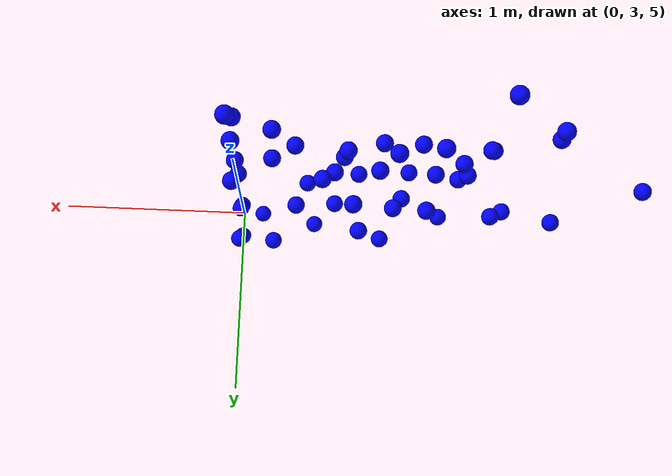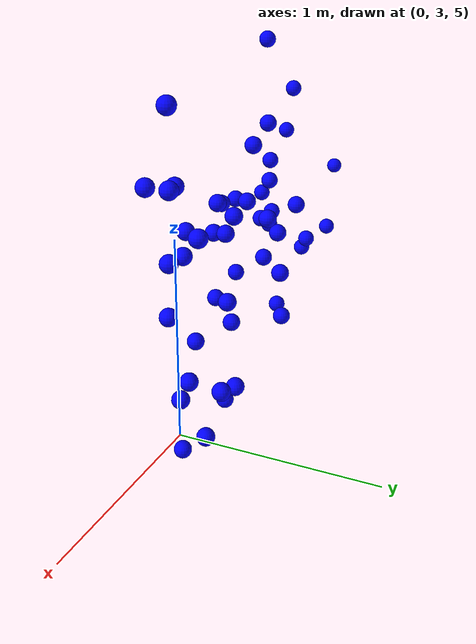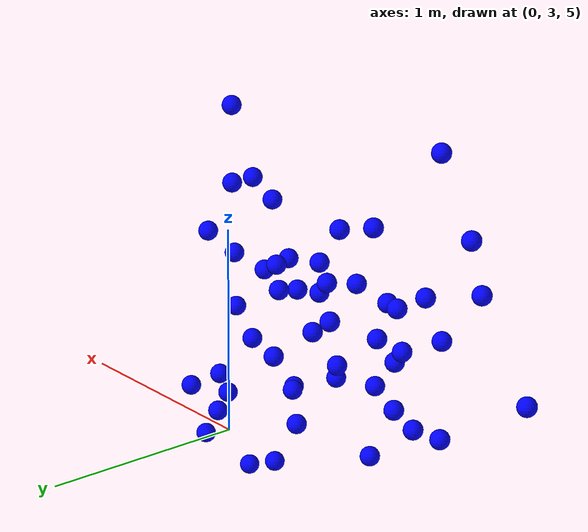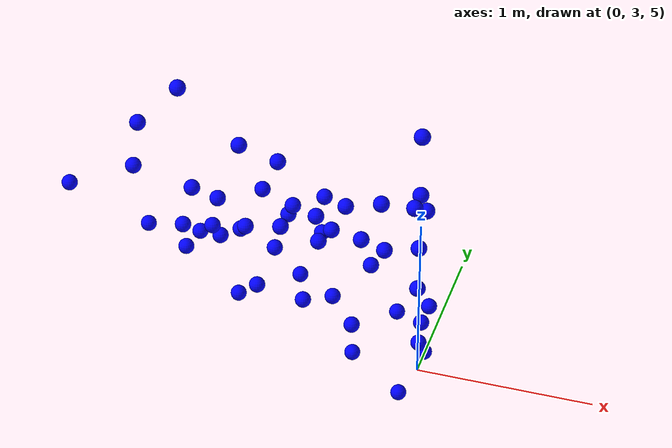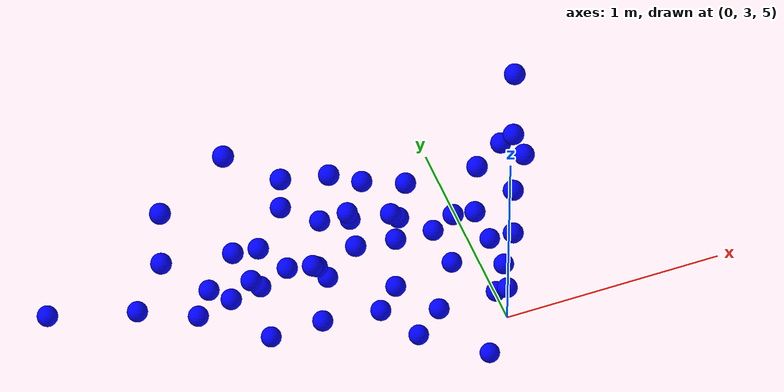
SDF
<sdf version="1.10">
 <world name="sphere">
  <model name="ground_plane">
   <static>true</static>
   <link name="link">
    <collision name="collision">
     <geometry><plane><normal>0 0 1</normal><size>100 100</size></plane></geometry>
    </collision>
    <visual name="visual">
     <geometry><plane><normal>0 0 1</normal><size>100 100</size></plane></geometry>
     <material>
      <ambient>0.800000012 0.800000012 0.800000012 1</ambient>
      <diffuse>0.800000012 0.800000012 0.800000012 1</diffuse>
      <specular>0.800000012 0.800000012 0.800000012 1</specular>
     </material>
    </visual>
    <inertial>
     <mass>1</mass>
     <inertia><ixx>1</ixx><ixy>0</ixy><ixz>0</ixz><iyy>1</iyy><iyz>0</iyz><izz>1</izz></inertia>
    </inertial>
   </link>
  </model>
  <model name="sphere_00">
   <pose>-0.8101000189781189 3.01882004737854 6.2474203109741211 0 0 0</pose>
   <link name="sphere_link">
    <inertial>
     <inertia>
      <ixx>0.10000000000000001</ixx>
      <ixy>0</ixy>
      <ixz>0</ixz>
      <iyy>0.10000000000000001</iyy>
      <iyz>0</iyz>
      <izz>0.10000000000000001</izz>
     </inertia>
     <mass>1</mass>
    </inertial>
    <collision name="sphere_collision">
     <geometry><sphere><radius>0.044999999999999998</radius></sphere></geometry>
    </collision>
    <visual name="sphere_visual">
     <geometry><sphere><radius>0.044999999999999998</radius></sphere></geometry>
     <material><ambient>0 0 1 1</ambient><diffuse>0 0 1 1</diffuse><specular>0 0 1 1</specular></material>
    </visual>
   </link>
   <static>false</static>
   <self_collide>true</self_collide>
  </model>
  <model name="sphere_01">
   <pose>-0.30862641334533691 3.1076400279998779 5.5938301086425781 0 0 0</pose>
   <link name="sphere_link">
    <inertial>
     <inertia>
      <ixx>0.10000000000000001</ixx>
      <ixy>0</ixy>
      <ixz>0</ixz>
      <iyy>0.10000000000000001</iyy>
      <iyz>0</iyz>
      <izz>0.10000000000000001</izz>
     </inertia>
     <mass>1</mass>
    </inertial>
    <collision name="sphere_collision">
     <geometry><sphere><radius>0.044999999999999998</radius></sphere></geometry>
    </collision>
    <visual name="sphere_visual">
     <geometry><sphere><radius>0.044999999999999998</radius></sphere></geometry>
     <material><ambient>0 0 1 1</ambient><diffuse>0 0 1 1</diffuse><specular>0 0 1 1</specular></material>
    </visual>
   </link>
   <static>false</static>
   <self_collide>true</self_collide>
  </model>
  <model name="sphere_02">
   <pose>-0.18142400681972504 3.2076399326324463 5.2198047637939453 0 0 0</pose>
   <link name="sphere_link">
    <inertial>
     <inertia>
      <ixx>0.10000000000000001</ixx>
      <ixy>0</ixy>
      <ixz>0</ixz>
      <iyy>0.10000000000000001</iyy>
      <iyz>0</iyz>
      <izz>0.10000000000000001</izz>
     </inertia>
     <mass>1</mass>
    </inertial>
    <collision name="sphere_collision">
     <geometry><sphere><radius>0.044999999999999998</radius></sphere></geometry>
    </collision>
    <visual name="sphere_visual">
     <geometry><sphere><radius>0.044999999999999998</radius></sphere></geometry>
     <material><ambient>0 0 1 1</ambient><diffuse>0 0 1 1</diffuse><specular>0 0 1 1</specular></material>
    </visual>
   </link>
   <static>false</static>
   <self_collide>true</self_collide>
  </model>
  <model name="sphere_05">
   <pose>0 2.9661004543304443 5.8801798820495605 0 0 0</pose>
   <link name="sphere_link">
    <inertial>
     <inertia>
      <ixx>0.10000000000000001</ixx>
      <ixy>0</ixy>
      <ixz>0</ixz>
      <iyy>0.10000000000000001</iyy>
      <iyz>0</iyz>
      <izz>0.10000000000000001</izz>
     </inertia>
     <mass>1</mass>
    </inertial>
    <collision name="sphere_collision">
     <geometry><sphere><radius>0.044999999999999998</radius></sphere></geometry>
    </collision>
    <visual name="sphere_visual">
     <geometry><sphere><radius>0.044999999999999998</radius></sphere></geometry>
     <material><ambient>0 0 1 1</ambient><diffuse>0 0 1 1</diffuse><specular>0 0 1 1</specular></material>
    </visual>
   </link>
   <static>false</static>
   <self_collide>true</self_collide>
  </model>
  <model name="sphere_08">
   <pose>0 3.0543978214263916 5.3013801574707031 0 0 0</pose>
   <link name="sphere_link">
    <inertial>
     <inertia>
      <ixx>0.10000000000000001</ixx>
      <ixy>0</ixy>
      <ixz>0</ixz>
      <iyy>0.10000000000000001</iyy>
      <iyz>0</iyz>
      <izz>0.10000000000000001</izz>
     </inertia>
     <mass>1</mass>
    </inertial>
    <collision name="sphere_collision">
     <geometry><sphere><radius>0.044999999999999998</radius></sphere></geometry>
    </collision>
    <visual name="sphere_visual">
     <geometry><sphere><radius>0.044999999999999998</radius></sphere></geometry>
     <material><ambient>0 0 1 1</ambient><diffuse>0 0 1 1</diffuse><specular>0 0 1 1</specular></material>
    </visual>
   </link>
   <static>false</static>
   <self_collide>true</self_collide>
  </model>
  <model name="sphere_09">
   <pose>-0.50494199991226196 3.0061700344085693 5.8660669326782227 0 0 0</pose>
   <link name="sphere_link">
    <inertial>
     <inertia>
      <ixx>0.10000000000000001</ixx>
      <ixy>0</ixy>
      <ixz>0</ixz>
      <iyy>0.10000000000000001</iyy>
      <iyz>0</iyz>
      <izz>0.10000000000000001</izz>
     </inertia>
     <mass>1</mass>
     <pose>0 0 0.69999999999999996 0 0 0</pose>
    </inertial>
    <collision name="sphere_collision">
     <geometry><sphere><radius>0.044999999999999998</radius></sphere></geometry>
    </collision>
    <visual name="sphere_visual">
     <geometry><sphere><radius>0.044999999999999998</radius></sphere></geometry>
     <material><ambient>0 0 1 1</ambient><diffuse>0 0 1 1</diffuse><specular>0 0 1 1</specular></material>
    </visual>
   </link>
   <static>false</static>
   <self_collide>true</self_collide>
  </model>
  <model name="sphere_10">
   <pose>0 3.2213499546051025 5.2891402244567871 0 0 0</pose>
   <link name="sphere_link">
    <inertial>
     <inertia>
      <ixx>0.10000000000000001</ixx>
      <ixy>0</ixy>
      <ixz>0</ixz>
      <iyy>0.10000000000000001</iyy>
      <iyz>0</iyz>
      <izz>0.10000000000000001</izz>
     </inertia>
     <mass>1</mass>
     <pose>0 0 0.69999999999999996 0 0 0</pose>
    </inertial>
    <collision name="sphere_collision">
     <geometry><sphere><radius>0.044999999999999998</radius></sphere></geometry>
    </collision>
    <visual name="sphere_visual">
     <geometry><sphere><radius>0.044999999999999998</radius></sphere></geometry>
     <material><ambient>0 0 1 1</ambient><diffuse>0 0 1 1</diffuse><specular>0 0 1 1</specular></material>
    </visual>
   </link>
   <static>false</static>
   <self_collide>true</self_collide>
  </model>
  <model name="sphere_11">
   <pose>0 2.9791254997253418 6.5953397750854492 0 0 0</pose>
   <link name="sphere_link">
    <inertial>
     <inertia>
      <ixx>0.10000000000000001</ixx>
      <ixy>0</ixy>
      <ixz>0</ixz>
      <iyy>0.10000000000000001</iyy>
      <iyz>0</iyz>
      <izz>0.10000000000000001</izz>
     </inertia>
     <mass>1</mass>
     <pose>0 0 0.69999999999999996 0 0 0</pose>
    </inertial>
    <collision name="sphere_collision">
     <geometry><sphere><radius>0.044999999999999998</radius></sphere></geometry>
    </collision>
    <visual name="sphere_visual">
     <geometry><sphere><radius>0.044999999999999998</radius></sphere></geometry>
     <material><ambient>0 0 1 1</ambient><diffuse>0 0 1 1</diffuse><specular>0 0 1 1</specular></material>
    </visual>
   </link>
   <static>false</static>
   <self_collide>true</self_collide>
  </model>
  <model name="sphere_15">
   <pose>-0.19403360784053802 2.8993599414825439 6.1798100471496582 0 0 0</pose>
   <link name="sphere_link">
    <inertial>
     <inertia>
      <ixx>0.10000000000000001</ixx>
      <ixy>0</ixy>
      <ixz>0</ixz>
      <iyy>0.10000000000000001</iyy>
      <iyz>0</iyz>
      <izz>0.10000000000000001</izz>
     </inertia>
     <mass>1</mass>
     <pose>0 0 0.69999999999999996 0 0 0</pose>
    </inertial>
    <collision name="sphere_collision">
     <geometry><sphere><radius>0.044999999999999998</radius></sphere></geometry>
    </collision>
    <visual name="sphere_visual">
     <geometry><sphere><radius>0.044999999999999998</radius></sphere></geometry>
     <material><ambient>0 0 1 1</ambient><diffuse>0 0 1 1</diffuse><specular>0 0 1 1</specular></material>
    </visual>
   </link>
   <static>false</static>
   <self_collide>true</self_collide>
  </model>
  <model name="sphere_16">
   <pose>-1.3119100332260132 2.8792433738708496 6.7110099792480469 0 0 0</pose>
   <link name="sphere_link">
    <inertial>
     <inertia>
      <ixx>0.10000000000000001</ixx>
      <ixy>0</ixy>
      <ixz>0</ixz>
      <iyy>0.10000000000000001</iyy>
      <iyz>0</iyz>
      <izz>0.10000000000000001</izz>
     </inertia>
     <mass>1</mass>
     <pose>0 0 0.69999999999999996 0 0 0</pose>
    </inertial>
    <collision name="sphere_collision">
     <geometry><sphere><radius>0.044999999999999998</radius></sphere></geometry>
    </collision>
    <visual name="sphere_visual">
     <geometry><sphere><radius>0.044999999999999998</radius></sphere></geometry>
     <material><ambient>0 0 1 1</ambient><diffuse>0 0 1 1</diffuse><specular>0 0 1 1</specular></material>
    </visual>
   </link>
   <static>false</static>
   <self_collide>true</self_collide>
  </model>
  <model name="sphere_19">
   <pose>-0.74941295385360718 2.8662300109863281 5.9346098899841309 0 0 0</pose>
   <link name="sphere_link">
    <inertial>
     <inertia>
      <ixx>0.10000000000000001</ixx>
      <ixy>0</ixy>
      <ixz>0</ixz>
      <iyy>0.10000000000000001</iyy>
      <iyz>0</iyz>
      <izz>0.10000000000000001</izz>
     </inertia>
     <mass>1</mass>
     <pose>0 0 0.69999999999999996 0 0 0</pose>
    </inertial>
    <collision name="sphere_collision">
     <geometry><sphere><radius>0.044999999999999998</radius></sphere></geometry>
    </collision>
    <visual name="sphere_visual">
     <geometry><sphere><radius>0.044999999999999998</radius></sphere></geometry>
     <material><ambient>0 0 1 1</ambient><diffuse>0 0 1 1</diffuse><specular>0 0 1 1</specular></material>
    </visual>
   </link>
   <static>false</static>
   <self_collide>true</self_collide>
  </model>
  <model name="sphere_22">
   <pose>-1.0258899927139282 3.0086886882781982 6.3174500465393066 0 0 0</pose>
   <link name="sphere_link">
    <inertial>
     <inertia>
      <ixx>0.10000000000000001</ixx>
      <ixy>0</ixy>
      <ixz>0</ixz>
      <iyy>0.10000000000000001</iyy>
      <iyz>0</iyz>
      <izz>0.10000000000000001</izz>
     </inertia>
     <mass>1</mass>
     <pose>0 0 0.69999999999999996 0 0 0</pose>
    </inertial>
    <collision name="sphere_collision">
     <geometry><sphere><radius>0.044999999999999998</radius></sphere></geometry>
    </collision>
    <visual name="sphere_visual">
     <geometry><sphere><radius>0.044999999999999998</radius></sphere></geometry>
     <material><ambient>0 0 1 1</ambient><diffuse>0 0 1 1</diffuse><specular>0 0 1 1</specular></material>
    </visual>
   </link>
   <static>false</static>
   <self_collide>true</self_collide>
  </model>
  <model name="sphere_26">
   <pose>0 2.8582220077514648 6.2225799560546875 0 0 0</pose>
   <link name="sphere_link">
    <inertial>
     <inertia>
      <ixx>0.10000000000000001</ixx>
      <ixy>0</ixy>
      <ixz>0</ixz>
      <iyy>0.10000000000000001</iyy>
      <iyz>0</iyz>
      <izz>0.10000000000000001</izz>
     </inertia>
     <mass>1</mass>
     <pose>0 0 0.69999999999999996 0 0 0</pose>
    </inertial>
    <collision name="sphere_collision">
     <geometry><sphere><radius>0.044999999999999998</radius></sphere></geometry>
    </collision>
    <visual name="sphere_visual">
     <geometry><sphere><radius>0.044999999999999998</radius></sphere></geometry>
     <material><ambient>0 0 1 1</ambient><diffuse>0 0 1 1</diffuse><specular>0 0 1 1</specular></material>
    </visual>
   </link>
   <static>false</static>
   <self_collide>true</self_collide>
  </model>
  <model name="sphere_29">
   <pose>0 2.9778904914855957 6.2235097885131836 0 0 0</pose>
   <link name="sphere_link">
    <inertial>
     <inertia>
      <ixx>0.10000000000000001</ixx>
      <ixy>0</ixy>
      <ixz>0</ixz>
      <iyy>0.10000000000000001</iyy>
      <iyz>0</iyz>
      <izz>0.10000000000000001</izz>
     </inertia>
     <mass>1</mass>
     <pose>0 0 0.69999999999999996 0 0 0</pose>
    </inertial>
    <collision name="sphere_collision">
     <geometry><sphere><radius>0.044999999999999998</radius></sphere></geometry>
    </collision>
    <visual name="sphere_visual">
     <geometry><sphere><radius>0.044999999999999998</radius></sphere></geometry>
     <material><ambient>0 0 1 1</ambient><diffuse>0 0 1 1</diffuse><specular>0 0 1 1</specular></material>
    </visual>
   </link>
   <static>false</static>
   <self_collide>true</self_collide>
  </model>
  <model name="sphere_30">
   <pose>0 3.0074362754821777 5.1943202018737793 0 0 0</pose>
   <link name="sphere_link">
    <inertial>
     <inertia>
      <ixx>0.10000000000000001</ixx>
      <ixy>0</ixy>
      <ixz>0</ixz>
      <iyy>0.10000000000000001</iyy>
      <iyz>0</iyz>
      <izz>0.10000000000000001</izz>
     </inertia>
     <mass>1</mass>
     <pose>0 0 0.69999999999999996 0 0 0</pose>
    </inertial>
    <collision name="sphere_collision">
     <geometry><sphere><radius>0.044999999999999998</radius></sphere></geometry>
    </collision>
    <visual name="sphere_visual">
     <geometry><sphere><radius>0.044999999999999998</radius></sphere></geometry>
     <material><ambient>0 0 1 1</ambient><diffuse>0 0 1 1</diffuse><specular>0 0 1 1</specular></material>
    </visual>
   </link>
   <static>false</static>
   <self_collide>true</self_collide>
  </model>
  <model name="sphere_31">
   <pose>-0.85268700122833252 3.0630147457122803 5.6283798217773438 0 0 0</pose>
   <link name="sphere_link">
    <inertial>
     <inertia>
      <ixx>0.10000000000000001</ixx>
      <ixy>0</ixy>
      <ixz>0</ixz>
      <iyy>0.10000000000000001</iyy>
      <iyz>0</iyz>
      <izz>0.10000000000000001</izz>
     </inertia>
     <mass>1</mass>
     <pose>0 0 0.69999999999999996 0 0 0</pose>
    </inertial>
    <collision name="sphere_collision">
     <geometry><sphere><radius>0.044999999999999998</radius></sphere></geometry>
    </collision>
    <visual name="sphere_visual">
     <geometry><sphere><radius>0.044999999999999998</radius></sphere></geometry>
     <material><ambient>0 0 1 1</ambient><diffuse>0 0 1 1</diffuse><specular>0 0 1 1</specular></material>
    </visual>
   </link>
   <static>false</static>
   <self_collide>true</self_collide>
  </model>
  <model name="sphere_32">
   <pose>-1.2731363773345947 2.9205100536346436 6.0470099449157715 0 0 0</pose>
   <link name="sphere_link">
    <inertial>
     <inertia>
      <ixx>0.10000000000000001</ixx>
      <ixy>0</ixy>
      <ixz>0</ixz>
      <iyy>0.10000000000000001</iyy>
      <iyz>0</iyz>
      <izz>0.10000000000000001</izz>
     </inertia>
     <mass>1</mass>
     <pose>0 0 0.69999999999999996 0 0 0</pose>
    </inertial>
    <collision name="sphere_collision">
     <geometry><sphere><radius>0.044999999999999998</radius></sphere></geometry>
    </collision>
    <visual name="sphere_visual">
     <geometry><sphere><radius>0.044999999999999998</radius></sphere></geometry>
     <material><ambient>0 0 1 1</ambient><diffuse>0 0 1 1</diffuse><specular>0 0 1 1</specular></material>
    </visual>
   </link>
   <static>false</static>
   <self_collide>true</self_collide>
  </model>
  <model name="sphere_33">
   <pose>-0.60159999132156372 3.1903257369995117 5.940730094909668 0 0 0</pose>
   <link name="sphere_link">
    <inertial>
     <inertia>
      <ixx>0.10000000000000001</ixx>
      <ixy>0</ixy>
      <ixz>0</ixz>
      <iyy>0.10000000000000001</iyy>
      <iyz>0</iyz>
      <izz>0.10000000000000001</izz>
     </inertia>
     <mass>1</mass>
     <pose>0 0 0.69999999999999996 0 0 0</pose>
    </inertial>
    <collision name="sphere_collision">
     <geometry><sphere><radius>0.044999999999999998</radius></sphere></geometry>
    </collision>
    <visual name="sphere_visual">
     <geometry><sphere><radius>0.044999999999999998</radius></sphere></geometry>
     <material><ambient>0 0 1 1</ambient><diffuse>0 0 1 1</diffuse><specular>0 0 1 1</specular></material>
    </visual>
   </link>
   <static>false</static>
   <self_collide>true</self_collide>
  </model>
  <model name="sphere_34">
   <pose>0 2.9557774066925049 5.6145200729370117 0 0 0</pose>
   <link name="sphere_link">
    <inertial>
     <inertia>
      <ixx>0.10000000000000001</ixx>
      <ixy>0</ixy>
      <ixz>0</ixz>
      <iyy>0.10000000000000001</iyy>
      <iyz>0</iyz>
      <izz>0.10000000000000001</izz>
     </inertia>
     <mass>1</mass>
     <pose>0 0 0.69999999999999996 0 0 0</pose>
    </inertial>
    <collision name="sphere_collision">
     <geometry><sphere><radius>0.044999999999999998</radius></sphere></geometry>
    </collision>
    <visual name="sphere_visual">
     <geometry><sphere><radius>0.044999999999999998</radius></sphere></geometry>
     <material><ambient>0 0 1 1</ambient><diffuse>0 0 1 1</diffuse><specular>0 0 1 1</specular></material>
    </visual>
   </link>
   <static>false</static>
   <self_collide>true</self_collide>
  </model>
  <model name="sphere_36">
   <pose>0 3.137521505355835 5.0250701904296875 0 0 0</pose>
   <link name="sphere_link">
    <inertial>
     <inertia>
      <ixx>0.10000000000000001</ixx>
      <ixy>0</ixy>
      <ixz>0</ixz>
      <iyy>0.10000000000000001</iyy>
      <iyz>0</iyz>
      <izz>0.10000000000000001</izz>
     </inertia>
     <mass>1</mass>
     <pose>0 0 0.69999999999999996 0 0 0</pose>
    </inertial>
    <collision name="sphere_collision">
     <geometry><sphere><radius>0.044999999999999998</radius></sphere></geometry>
    </collision>
    <visual name="sphere_visual">
     <geometry><sphere><radius>0.044999999999999998</radius></sphere></geometry>
     <material><ambient>0 0 1 1</ambient><diffuse>0 0 1 1</diffuse><specular>0 0 1 1</specular></material>
    </visual>
   </link>
   <static>false</static>
   <self_collide>true</self_collide>
  </model>
  <model name="sphere_37">
   <pose>-1.1448651552200317 2.9704298973083496 5.9682598114013672 0 0 0</pose>
   <link name="sphere_link">
    <inertial>
     <inertia>
      <ixx>0.10000000000000001</ixx>
      <ixy>0</ixy>
      <ixz>0</ixz>
      <iyy>0.10000000000000001</iyy>
      <iyz>0</iyz>
      <izz>0.10000000000000001</izz>
     </inertia>
     <mass>1</mass>
     <pose>0 0 0.69999999999999996 0 0 0</pose>
    </inertial>
    <collision name="sphere_collision">
     <geometry><sphere><radius>0.044999999999999998</radius></sphere></geometry>
    </collision>
    <visual name="sphere_visual">
     <geometry><sphere><radius>0.044999999999999998</radius></sphere></geometry>
     <material><ambient>0 0 1 1</ambient><diffuse>0 0 1 1</diffuse><specular>0 0 1 1</specular></material>
    </visual>
   </link>
   <static>false</static>
   <self_collide>true</self_collide>
  </model>
  <model name="sphere_41">
   <pose>0 3.1170649528503418 6.0235199928283691 0 0 0</pose>
   <link name="sphere_link">
    <inertial>
     <inertia>
      <ixx>0.10000000000000001</ixx>
      <ixy>0</ixy>
      <ixz>0</ixz>
      <iyy>0.10000000000000001</iyy>
      <iyz>0</iyz>
      <izz>0.10000000000000001</izz>
     </inertia>
     <mass>1</mass>
     <pose>0 0 0.69999999999999996 0 0 0</pose>
    </inertial>
    <collision name="sphere_collision">
     <geometry><sphere><radius>0.044999999999999998</radius></sphere></geometry>
    </collision>
    <visual name="sphere_visual">
     <geometry><sphere><radius>0.044999999999999998</radius></sphere></geometry>
     <material><ambient>0 0 1 1</ambient><diffuse>0 0 1 1</diffuse><specular>0 0 1 1</specular></material>
    </visual>
   </link>
   <static>false</static>
   <self_collide>true</self_collide>
  </model>
  <model name="sphere_46">
   <pose>-2.0550100803375244 3.0402500629425049 5.8366270065307617 0 0 0</pose>
   <link name="sphere_link">
    <inertial>
     <inertia>
      <ixx>0.10000000000000001</ixx>
      <ixy>0</ixy>
      <ixz>0</ixz>
      <iyy>0.10000000000000001</iyy>
      <iyz>0</iyz>
      <izz>0.10000000000000001</izz>
     </inertia>
     <mass>1</mass>
     <pose>0 0 0.69999999999999996 0 0 0</pose>
    </inertial>
    <collision name="sphere_collision">
     <geometry><sphere><radius>0.044999999999999998</radius></sphere></geometry>
    </collision>
    <visual name="sphere_visual">
     <geometry><sphere><radius>0.044999999999999998</radius></sphere></geometry>
     <material><ambient>0 0 1 1</ambient><diffuse>0 0 1 1</diffuse><specular>0 0 1 1</specular></material>
    </visual>
   </link>
   <static>false</static>
   <self_collide>true</self_collide>
  </model>
  <model name="sphere_51">
   <pose>-0.50798201560974121 3.0342063903808594 5.3864998817443848 0 0 0</pose>
   <link name="sphere_link">
    <inertial>
     <inertia>
      <ixx>0.10000000000000001</ixx>
      <ixy>0</ixy>
      <ixz>0</ixz>
      <iyy>0.10000000000000001</iyy>
      <iyz>0</iyz>
      <izz>0.10000000000000001</izz>
     </inertia>
     <mass>1</mass>
     <pose>0 0 0.69999999999999996 0 0 0</pose>
    </inertial>
    <collision name="sphere_collision">
     <geometry><sphere><radius>0.044999999999999998</radius></sphere></geometry>
    </collision>
    <visual name="sphere_visual">
     <geometry><sphere><radius>0.044999999999999998</radius></sphere></geometry>
     <material><ambient>0 0 1 1</ambient><diffuse>0 0 1 1</diffuse><specular>0 0 1 1</specular></material>
    </visual>
   </link>
   <static>false</static>
   <self_collide>true</self_collide>
  </model>
  <model name="sphere_53">
   <pose>-0.63582098484039307 3.2473959922790527 5.6487398147583008 0 0 0</pose>
   <link name="sphere_link">
    <inertial>
     <inertia>
      <ixx>0.10000000000000001</ixx>
      <ixy>0</ixy>
      <ixz>0</ixz>
      <iyy>0.10000000000000001</iyy>
      <iyz>0</iyz>
      <izz>0.10000000000000001</izz>
     </inertia>
     <mass>1</mass>
     <pose>0 0 0.69999999999999996 0 0 0</pose>
    </inertial>
    <collision name="sphere_collision">
     <geometry><sphere><radius>0.044999999999999998</radius></sphere></geometry>
    </collision>
    <visual name="sphere_visual">
     <geometry><sphere><radius>0.044999999999999998</radius></sphere></geometry>
     <material><ambient>0 0 1 1</ambient><diffuse>0 0 1 1</diffuse><specular>0 0 1 1</specular></material>
    </visual>
   </link>
   <static>false</static>
   <self_collide>true</self_collide>
  </model>
  <model name="sphere_54">
   <pose>-0.72920799255371094 3.0216891765594482 5.9718399047851562 0 0 0</pose>
   <link name="sphere_link">
    <inertial>
     <inertia>
      <ixx>0.10000000000000001</ixx>
      <ixy>0</ixy>
      <ixz>0</ixz>
      <iyy>0.10000000000000001</iyy>
      <iyz>0</iyz>
      <izz>0.10000000000000001</izz>
     </inertia>
     <mass>1</mass>
     <pose>0 0 0.69999999999999996 0 0 0</pose>
    </inertial>
    <collision name="sphere_collision">
     <geometry><sphere><radius>0.044999999999999998</radius></sphere></geometry>
    </collision>
    <visual name="sphere_visual">
     <geometry><sphere><radius>0.044999999999999998</radius></sphere></geometry>
     <material><ambient>0 0 1 1</ambient><diffuse>0 0 1 1</diffuse><specular>0 0 1 1</specular></material>
    </visual>
   </link>
   <static>false</static>
   <self_collide>true</self_collide>
  </model>
  <model name="sphere_56">
   <pose>-0.56873500347137451 2.9315109252929688 5.9971199035644531 0 0 0</pose>
   <link name="sphere_link">
    <inertial>
     <inertia>
      <ixx>0.10000000000000001</ixx>
      <ixy>0</ixy>
      <ixz>0</ixz>
      <iyy>0.10000000000000001</iyy>
      <iyz>0</iyz>
      <izz>0.10000000000000001</izz>
     </inertia>
     <mass>1</mass>
     <pose>0 0 0.69999999999999996 0 0 0</pose>
    </inertial>
    <collision name="sphere_collision">
     <geometry><sphere><radius>0.044999999999999998</radius></sphere></geometry>
    </collision>
    <visual name="sphere_visual">
     <geometry><sphere><radius>0.044999999999999998</radius></sphere></geometry>
     <material><ambient>0 0 1 1</ambient><diffuse>0 0 1 1</diffuse><specular>0 0 1 1</specular></material>
    </visual>
   </link>
   <static>false</static>
   <self_collide>true</self_collide>
  </model>
  <model name="sphere_57">
   <pose>-0.097056999802589417 2.9574806690216064 4.8474798202514648 0 0 0</pose>
   <link name="sphere_link">
    <inertial>
     <inertia>
      <ixx>0.10000000000000001</ixx>
      <ixy>0</ixy>
      <ixz>0</ixz>
      <iyy>0.10000000000000001</iyy>
      <iyz>0</iyz>
      <izz>0.10000000000000001</izz>
     </inertia>
     <mass>1</mass>
     <pose>0 0 0.69999999999999996 0 0 0</pose>
    </inertial>
    <collision name="sphere_collision">
     <geometry><sphere><radius>0.044999999999999998</radius></sphere></geometry>
    </collision>
    <visual name="sphere_visual">
     <geometry><sphere><radius>0.044999999999999998</radius></sphere></geometry>
     <material><ambient>0 0 1 1</ambient><diffuse>0 0 1 1</diffuse><specular>0 0 1 1</specular></material>
    </visual>
   </link>
   <static>false</static>
   <self_collide>true</self_collide>
  </model>
  <model name="sphere_60">
   <pose>-0.55157202482223511 2.9167957305908203 5.8429899215698242 0 0 0</pose>
   <link name="sphere_link">
    <inertial>
     <inertia>
      <ixx>0.10000000000000001</ixx>
      <ixy>0</ixy>
      <ixz>0</ixz>
      <iyy>0.10000000000000001</iyy>
      <iyz>0</iyz>
      <izz>0.10000000000000001</izz>
     </inertia>
     <mass>1</mass>
     <pose>0 0 0.69999999999999996 0 0 0</pose>
    </inertial>
    <collision name="sphere_collision">
     <geometry><sphere><radius>0.044999999999999998</radius></sphere></geometry>
    </collision>
    <visual name="sphere_visual">
     <geometry><sphere><radius>0.044999999999999998</radius></sphere></geometry>
     <material><ambient>0 0 1 1</ambient><diffuse>0 0 1 1</diffuse><specular>0 0 1 1</specular></material>
    </visual>
   </link>
   <static>false</static>
   <self_collide>true</self_collide>
  </model>
  <model name="sphere_62">
   <pose>-1.3090777397155762 2.8540999889373779 5.8382902145385742 0 0 0</pose>
   <link name="sphere_link">
    <inertial>
     <inertia>
      <ixx>0.10000000000000001</ixx>
      <ixy>0</ixy>
      <ixz>0</ixz>
      <iyy>0.10000000000000001</iyy>
      <iyz>0</iyz>
      <izz>0.10000000000000001</izz>
     </inertia>
     <mass>1</mass>
     <pose>0 0 0.69999999999999996 0 0 0</pose>
    </inertial>
    <collision name="sphere_collision">
     <geometry><sphere><radius>0.044999999999999998</radius></sphere></geometry>
    </collision>
    <visual name="sphere_visual">
     <geometry><sphere><radius>0.044999999999999998</radius></sphere></geometry>
     <material><ambient>0 0 1 1</ambient><diffuse>0 0 1 1</diffuse><specular>0 0 1 1</specular></material>
    </visual>
   </link>
   <static>false</static>
   <self_collide>true</self_collide>
  </model>
  <model name="sphere_64">
   <pose>-1.0180035829544067 2.9742200374603271 5.7857599258422852 0 0 0</pose>
   <link name="sphere_link">
    <inertial>
     <inertia>
      <ixx>0.10000000000000001</ixx>
      <ixy>0</ixy>
      <ixz>0</ixz>
      <iyy>0.10000000000000001</iyy>
      <iyz>0</iyz>
      <izz>0.10000000000000001</izz>
     </inertia>
     <mass>1</mass>
     <pose>0 0 0.69999999999999996 0 0 0</pose>
    </inertial>
    <collision name="sphere_collision">
     <geometry><sphere><radius>0.044999999999999998</radius></sphere></geometry>
    </collision>
    <visual name="sphere_visual">
     <geometry><sphere><radius>0.044999999999999998</radius></sphere></geometry>
     <material><ambient>0 0 1 1</ambient><diffuse>0 0 1 1</diffuse><specular>0 0 1 1</specular></material>
    </visual>
   </link>
   <static>false</static>
   <self_collide>true</self_collide>
  </model>
  <model name="sphere_66">
   <pose>-1.1381896734237671 2.9742898941040039 5.7152600288391113 0 0 0</pose>
   <link name="sphere_link">
    <inertial>
     <inertia>
      <ixx>0.10000000000000001</ixx>
      <ixy>0</ixy>
      <ixz>0</ixz>
      <iyy>0.10000000000000001</iyy>
      <iyz>0</iyz>
      <izz>0.10000000000000001</izz>
     </inertia>
     <mass>1</mass>
     <pose>0 0 0.69999999999999996 0 0 0</pose>
    </inertial>
    <collision name="sphere_collision">
     <geometry><sphere><radius>0.044999999999999998</radius></sphere></geometry>
    </collision>
    <visual name="sphere_visual">
     <geometry><sphere><radius>0.044999999999999998</radius></sphere></geometry>
     <material><ambient>0 0 1 1</ambient><diffuse>0 0 1 1</diffuse><specular>0 0 1 1</specular></material>
    </visual>
   </link>
   <static>false</static>
   <self_collide>true</self_collide>
  </model>
  <model name="sphere_68">
   <pose>-1.6346132755279541 3.1454999446868896 5.5695600509643555 0 0 0</pose>
   <link name="sphere_link">
    <inertial>
     <inertia>
      <ixx>0.10000000000000001</ixx>
      <ixy>0</ixy>
      <ixz>0</ixz>
      <iyy>0.10000000000000001</iyy>
      <iyz>0</iyz>
      <izz>0.10000000000000001</izz>
     </inertia>
     <mass>1</mass>
     <pose>0 0 0.69999999999999996 0 0 0</pose>
    </inertial>
    <collision name="sphere_collision">
     <geometry><sphere><radius>0.044999999999999998</radius></sphere></geometry>
    </collision>
    <visual name="sphere_visual">
     <geometry><sphere><radius>0.044999999999999998</radius></sphere></geometry>
     <material><ambient>0 0 1 1</ambient><diffuse>0 0 1 1</diffuse><specular>0 0 1 1</specular></material>
    </visual>
   </link>
   <static>false</static>
   <self_collide>true</self_collide>
  </model>
  <model name="sphere_69">
   <pose>-0.89724403619766235 2.8791100978851318 5.4942898750305176 0 0 0</pose>
   <link name="sphere_link">
    <inertial>
     <inertia>
      <ixx>0.10000000000000001</ixx>
      <ixy>0</ixy>
      <ixz>0</ixz>
      <iyy>0.10000000000000001</iyy>
      <iyz>0</iyz>
      <izz>0.10000000000000001</izz>
     </inertia>
     <mass>1</mass>
     <pose>0 0 0.69999999999999996 0 0 0</pose>
    </inertial>
    <collision name="sphere_collision">
     <geometry><sphere><radius>0.044999999999999998</radius></sphere></geometry>
    </collision>
    <visual name="sphere_visual">
     <geometry><sphere><radius>0.044999999999999998</radius></sphere></geometry>
     <material><ambient>0 0 1 1</ambient><diffuse>0 0 1 1</diffuse><specular>0 0 1 1</specular></material>
    </visual>
   </link>
   <static>false</static>
   <self_collide>true</self_collide>
  </model>
  <model name="sphere_71">
   <pose>-0.7541159987449646 3.2116148471832275 5.3532800674438477 0 0 0</pose>
   <link name="sphere_link">
    <inertial>
     <inertia>
      <ixx>0.10000000000000001</ixx>
      <ixy>0</ixy>
      <ixz>0</ixz>
      <iyy>0.10000000000000001</iyy>
      <iyz>0</iyz>
      <izz>0.10000000000000001</izz>
     </inertia>
     <mass>1</mass>
     <pose>0 0 0.69999999999999996 0 0 0</pose>
    </inertial>
    <collision name="sphere_collision">
     <geometry><sphere><radius>0.044999999999999998</radius></sphere></geometry>
    </collision>
    <visual name="sphere_visual">
     <geometry><sphere><radius>0.044999999999999998</radius></sphere></geometry>
     <material><ambient>0 0 1 1</ambient><diffuse>0 0 1 1</diffuse><specular>0 0 1 1</specular></material>
    </visual>
   </link>
   <static>false</static>
   <self_collide>true</self_collide>
  </model>
  <model name="sphere_72">
   <pose>-1.3178199529647827 3.1317098140716553 5.5926299095153809 0 0 0</pose>
   <link name="sphere_link">
    <inertial>
     <inertia>
      <ixx>0.10000000000000001</ixx>
      <ixy>0</ixy>
      <ixz>0</ixz>
      <iyy>0.10000000000000001</iyy>
      <iyz>0</iyz>
      <izz>0.10000000000000001</izz>
     </inertia>
     <mass>1</mass>
     <pose>0 0 0.69999999999999996 0 0 0</pose>
    </inertial>
    <collision name="sphere_collision">
     <geometry><sphere><radius>0.044999999999999998</radius></sphere></geometry>
    </collision>
    <visual name="sphere_visual">
     <geometry><sphere><radius>0.044999999999999998</radius></sphere></geometry>
     <material><ambient>0 0 1 1</ambient><diffuse>0 0 1 1</diffuse><specular>0 0 1 1</specular></material>
    </visual>
   </link>
   <static>false</static>
   <self_collide>true</self_collide>
  </model>
  <model name="sphere_73">
   <pose>-1.5954699516296387 2.88720703125 6.1508598327636719 0 0 0</pose>
   <link name="sphere_link">
    <inertial>
     <inertia>
      <ixx>0.10000000000000001</ixx>
      <ixy>0</ixy>
      <ixz>0</ixz>
      <iyy>0.10000000000000001</iyy>
      <iyz>0</iyz>
      <izz>0.10000000000000001</izz>
     </inertia>
     <mass>1</mass>
     <pose>0 0 0.69999999999999996 0 0 0</pose>
    </inertial>
    <collision name="sphere_collision">
     <geometry><sphere><radius>0.044999999999999998</radius></sphere></geometry>
    </collision>
    <visual name="sphere_visual">
     <geometry><sphere><radius>0.044999999999999998</radius></sphere></geometry>
     <material><ambient>0 0 1 1</ambient><diffuse>0 0 1 1</diffuse><specular>0 0 1 1</specular></material>
    </visual>
   </link>
   <static>false</static>
   <self_collide>true</self_collide>
  </model>
  <model name="sphere_74">
   <pose>-1.1813000440597534 2.9703299999237061 5.7769145965576172 0 0 0</pose>
   <link name="sphere_link">
    <inertial>
     <inertia>
      <ixx>0.10000000000000001</ixx>
      <ixy>0</ixy>
      <ixz>0</ixz>
      <iyy>0.10000000000000001</iyy>
      <iyz>0</iyz>
      <izz>0.10000000000000001</izz>
     </inertia>
     <mass>1</mass>
     <pose>0 0 0.69999999999999996 0 0 0</pose>
    </inertial>
    <collision name="sphere_collision">
     <geometry><sphere><radius>0.044999999999999998</radius></sphere></geometry>
    </collision>
    <visual name="sphere_visual">
     <geometry><sphere><radius>0.044999999999999998</radius></sphere></geometry>
     <material><ambient>0 0 1 1</ambient><diffuse>0 0 1 1</diffuse><specular>0 0 1 1</specular></material>
    </visual>
   </link>
   <static>false</static>
   <self_collide>true</self_collide>
  </model>
  <model name="sphere_79">
   <pose>-1.5744999647140503 2.934680700302124 6.4048399925231934 0 0 0</pose>
   <link name="sphere_link">
    <inertial>
     <inertia>
      <ixx>0.10000000000000001</ixx>
      <ixy>0</ixy>
      <ixz>0</ixz>
      <iyy>0.10000000000000001</iyy>
      <iyz>0</iyz>
      <izz>0.10000000000000001</izz>
     </inertia>
     <mass>1</mass>
     <pose>0 0 0.69999999999999996 0 0 0</pose>
    </inertial>
    <collision name="sphere_collision">
     <geometry><sphere><radius>0.044999999999999998</radius></sphere></geometry>
    </collision>
    <visual name="sphere_visual">
     <geometry><sphere><radius>0.044999999999999998</radius></sphere></geometry>
     <material><ambient>0 0 1 1</ambient><diffuse>0 0 1 1</diffuse><specular>0 0 1 1</specular></material>
    </visual>
   </link>
   <static>false</static>
   <self_collide>true</self_collide>
  </model>
  <model name="sphere_81">
   <pose>-1.3863500356674194 3.0794885158538818 5.5084800720214844 0 0 0</pose>
   <link name="sphere_link">
    <inertial>
     <inertia>
      <ixx>0.10000000000000001</ixx>
      <ixy>0</ixy>
      <ixz>0</ixz>
      <iyy>0.10000000000000001</iyy>
      <iyz>0</iyz>
      <izz>0.10000000000000001</izz>
     </inertia>
     <mass>1</mass>
     <pose>0 0 0.69999999999999996 0 0 0</pose>
    </inertial>
    <collision name="sphere_collision">
     <geometry><sphere><radius>0.044999999999999998</radius></sphere></geometry>
    </collision>
    <visual name="sphere_visual">
     <geometry><sphere><radius>0.044999999999999998</radius></sphere></geometry>
     <material><ambient>0 0 1 1</ambient><diffuse>0 0 1 1</diffuse><specular>0 0 1 1</specular></material>
    </visual>
   </link>
   <static>false</static>
   <self_collide>true</self_collide>
  </model>
  <model name="sphere_82">
   <pose>-0.39638400077819824 3.0480237007141113 4.9968099594116211 0 0 0</pose>
   <link name="sphere_link">
    <inertial>
     <inertia>
      <ixx>0.10000000000000001</ixx>
      <ixy>0</ixy>
      <ixz>0</ixz>
      <iyy>0.10000000000000001</iyy>
      <iyz>0</iyz>
      <izz>0.10000000000000001</izz>
     </inertia>
     <mass>1</mass>
     <pose>0 0 0.69999999999999996 0 0 0</pose>
    </inertial>
    <collision name="sphere_collision">
     <geometry><sphere><radius>0.044999999999999998</radius></sphere></geometry>
    </collision>
    <visual name="sphere_visual">
     <geometry><sphere><radius>0.044999999999999998</radius></sphere></geometry>
     <material><ambient>0 0 1 1</ambient><diffuse>0 0 1 1</diffuse><specular>0 0 1 1</specular></material>
    </visual>
   </link>
   <static>false</static>
   <self_collide>true</self_collide>
  </model>
  <model name="sphere_84">
   <pose>-0.63266497850418091 2.8831799030303955 5.4468636512756348 0 0 0</pose>
   <link name="sphere_link">
    <inertial>
     <inertia>
      <ixx>0.10000000000000001</ixx>
      <ixy>0</ixy>
      <ixz>0</ixz>
      <iyy>0.10000000000000001</iyy>
      <iyz>0</iyz>
      <izz>0.10000000000000001</izz>
     </inertia>
     <mass>1</mass>
     <pose>0 0 0.69999999999999996 0 0 0</pose>
    </inertial>
    <collision name="sphere_collision">
     <geometry><sphere><radius>0.044999999999999998</radius></sphere></geometry>
    </collision>
    <visual name="sphere_visual">
     <geometry><sphere><radius>0.044999999999999998</radius></sphere></geometry>
     <material><ambient>0 0 1 1</ambient><diffuse>0 0 1 1</diffuse><specular>0 0 1 1</specular></material>
    </visual>
   </link>
   <static>false</static>
   <self_collide>true</self_collide>
  </model>
  <model name="sphere_85">
   <pose>-1.0719000101089478 3.0541682243347168 5.2646098136901855 0 0 0</pose>
   <link name="sphere_link">
    <inertial>
     <inertia>
      <ixx>0.10000000000000001</ixx>
      <ixy>0</ixy>
      <ixz>0</ixz>
      <iyy>0.10000000000000001</iyy>
      <iyz>0</iyz>
      <izz>0.10000000000000001</izz>
     </inertia>
     <mass>1</mass>
     <pose>0 0 0.69999999999999996 0 0 0</pose>
    </inertial>
    <collision name="sphere_collision">
     <geometry><sphere><radius>0.044999999999999998</radius></sphere></geometry>
    </collision>
    <visual name="sphere_visual">
     <geometry><sphere><radius>0.044999999999999998</radius></sphere></geometry>
     <material><ambient>0 0 1 1</ambient><diffuse>0 0 1 1</diffuse><specular>0 0 1 1</specular></material>
    </visual>
   </link>
   <static>false</static>
   <self_collide>true</self_collide>
  </model>
  <model name="sphere_86">
   <pose>-0.35765299201011658 2.9042558670043945 5.3179998397827148 0 0 0</pose>
   <link name="sphere_link">
    <inertial>
     <inertia>
      <ixx>0.10000000000000001</ixx>
      <ixy>0</ixy>
      <ixz>0</ixz>
      <iyy>0.10000000000000001</iyy>
      <iyz>0</iyz>
      <izz>0.10000000000000001</izz>
     </inertia>
     <mass>1</mass>
     <pose>0 0 0.69999999999999996 0 0 0</pose>
    </inertial>
    <collision name="sphere_collision">
     <geometry><sphere><radius>0.044999999999999998</radius></sphere></geometry>
    </collision>
    <visual name="sphere_visual">
     <geometry><sphere><radius>0.044999999999999998</radius></sphere></geometry>
     <material><ambient>0 0 1 1</ambient><diffuse>0 0 1 1</diffuse><specular>0 0 1 1</specular></material>
    </visual>
   </link>
   <static>false</static>
   <self_collide>true</self_collide>
  </model>
  <model name="sphere_87">
   <pose>-0.96503102779388428 3.2001903057098389 5.9092597961425781 0 0 0</pose>
   <link name="sphere_link">
    <inertial>
     <inertia>
      <ixx>0.10000000000000001</ixx>
      <ixy>0</ixy>
      <ixz>0</ixz>
      <iyy>0.10000000000000001</iyy>
      <iyz>0</iyz>
      <izz>0.10000000000000001</izz>
     </inertia>
     <mass>1</mass>
     <pose>0 0 0.69999999999999996 0 0 0</pose>
    </inertial>
    <collision name="sphere_collision">
     <geometry><sphere><radius>0.044999999999999998</radius></sphere></geometry>
    </collision>
    <visual name="sphere_visual">
     <geometry><sphere><radius>0.044999999999999998</radius></sphere></geometry>
     <material><ambient>0 0 1 1</ambient><diffuse>0 0 1 1</diffuse><specular>0 0 1 1</specular></material>
    </visual>
   </link>
   <static>false</static>
   <self_collide>true</self_collide>
  </model>
  <model name="sphere_88">
   <pose>-0.94645702838897705 2.8550364971160889 5.9024901390075684 0 0 0</pose>
   <link name="sphere_link">
    <inertial>
     <inertia>
      <ixx>0.10000000000000001</ixx>
      <ixy>0</ixy>
      <ixz>0</ixz>
      <iyy>0.10000000000000001</iyy>
      <iyz>0</iyz>
      <izz>0.10000000000000001</izz>
     </inertia>
     <mass>1</mass>
     <pose>0 0 0.69999999999999996 0 0 0</pose>
    </inertial>
    <collision name="sphere_collision">
     <geometry><sphere><radius>0.044999999999999998</radius></sphere></geometry>
    </collision>
    <visual name="sphere_visual">
     <geometry><sphere><radius>0.044999999999999998</radius></sphere></geometry>
     <material><ambient>0 0 1 1</ambient><diffuse>0 0 1 1</diffuse><specular>0 0 1 1</specular></material>
    </visual>
   </link>
   <static>false</static>
   <self_collide>true</self_collide>
  </model>
  <model name="sphere_91">
   <pose>-0.30221301317214966 2.8924190998077393 5.9259800910949707 0 0 0</pose>
   <link name="sphere_link">
    <inertial>
     <inertia>
      <ixx>0.10000000000000001</ixx>
      <ixy>0</ixy>
      <ixz>0</ixz>
      <iyy>0.10000000000000001</iyy>
      <iyz>0</iyz>
      <izz>0.10000000000000001</izz>
     </inertia>
     <mass>1</mass>
     <pose>0 0 0.69999999999999996 0 0 0</pose>
    </inertial>
    <collision name="sphere_collision">
     <geometry><sphere><radius>0.044999999999999998</radius></sphere></geometry>
    </collision>
    <visual name="sphere_visual">
     <geometry><sphere><radius>0.044999999999999998</radius></sphere></geometry>
     <material><ambient>0 0 1 1</ambient><diffuse>0 0 1 1</diffuse><specular>0 0 1 1</specular></material>
    </visual>
   </link>
   <static>false</static>
   <self_collide>true</self_collide>
  </model>
  <model name="sphere_92">
   <pose>-0.18494200706481934 2.9385952949523926 5.8467998504638672 0 0 0</pose>
   <link name="sphere_link">
    <inertial>
     <inertia>
      <ixx>0.10000000000000001</ixx>
      <ixy>0</ixy>
      <ixz>0</ixz>
      <iyy>0.10000000000000001</iyy>
      <iyz>0</iyz>
      <izz>0.10000000000000001</izz>
     </inertia>
     <mass>1</mass>
     <pose>0 0 0.69999999999999996 0 0 0</pose>
    </inertial>
    <collision name="sphere_collision">
     <geometry><sphere><radius>0.044999999999999998</radius></sphere></geometry>
    </collision>
    <visual name="sphere_visual">
     <geometry><sphere><radius>0.044999999999999998</radius></sphere></geometry>
     <material><ambient>0 0 1 1</ambient><diffuse>0 0 1 1</diffuse><specular>0 0 1 1</specular></material>
    </visual>
   </link>
   <static>false</static>
   <self_collide>true</self_collide>
  </model>
  <model name="sphere_95">
   <pose>-0.44592800736427307 3.0792417526245117 5.985410213470459 0 0 0</pose>
   <link name="sphere_link">
    <inertial>
     <inertia>
      <ixx>0.10000000000000001</ixx>
      <ixy>0</ixy>
      <ixz>0</ixz>
      <iyy>0.10000000000000001</iyy>
      <iyz>0</iyz>
      <izz>0.10000000000000001</izz>
     </inertia>
     <mass>1</mass>
     <pose>0 0 0.69999999999999996 0 0 0</pose>
    </inertial>
    <collision name="sphere_collision">
     <geometry><sphere><radius>0.044999999999999998</radius></sphere></geometry>
    </collision>
    <visual name="sphere_visual">
     <geometry><sphere><radius>0.044999999999999998</radius></sphere></geometry>
     <material><ambient>0 0 1 1</ambient><diffuse>0 0 1 1</diffuse><specular>0 0 1 1</specular></material>
    </visual>
   </link>
   <static>false</static>
   <self_collide>true</self_collide>
  </model>
  <model name="sphere_98">
   <pose>-0.80334502458572388 3.1627898216247559 5.7980599403381348 0 0 0</pose>
   <link name="sphere_link">
    <inertial>
     <inertia>
      <ixx>0.10000000000000001</ixx>
      <ixy>0</ixy>
      <ixz>0</ixz>
      <iyy>0.10000000000000001</iyy>
      <iyz>0</iyz>
      <izz>0.10000000000000001</izz>
     </inertia>
     <mass>1</mass>
     <pose>0 0 0.69999999999999996 0 0 0</pose>
    </inertial>
    <collision name="sphere_collision">
     <geometry><sphere><radius>0.044999999999999998</radius></sphere></geometry>
    </collision>
    <visual name="sphere_visual">
     <geometry><sphere><radius>0.044999999999999998</radius></sphere></geometry>
     <material><ambient>0 0 1 1</ambient><diffuse>0 0 1 1</diffuse><specular>0 0 1 1</specular></material>
    </visual>
   </link>
   <static>false</static>
   <self_collide>true</self_collide>
  </model>
 </world>
</sdf>
